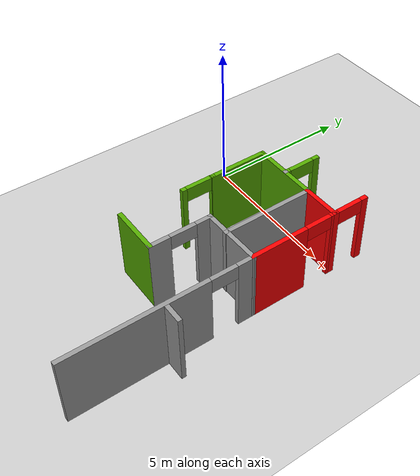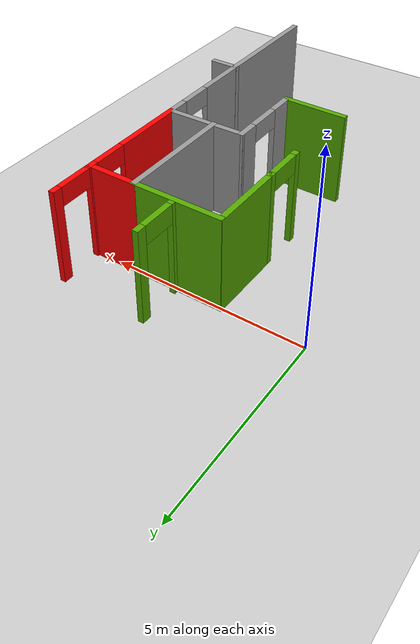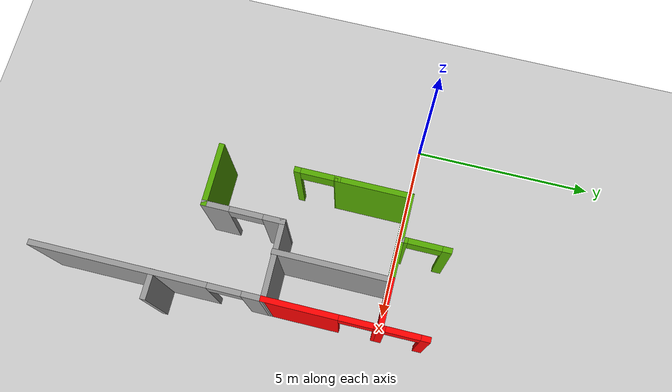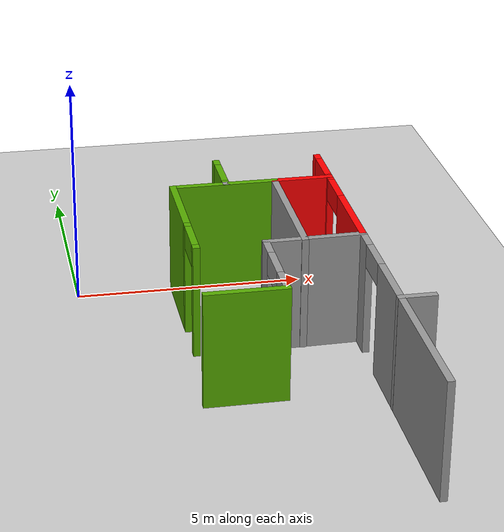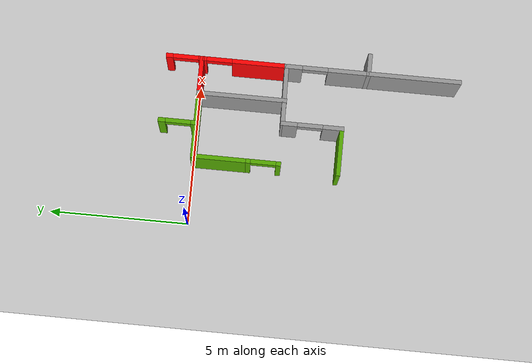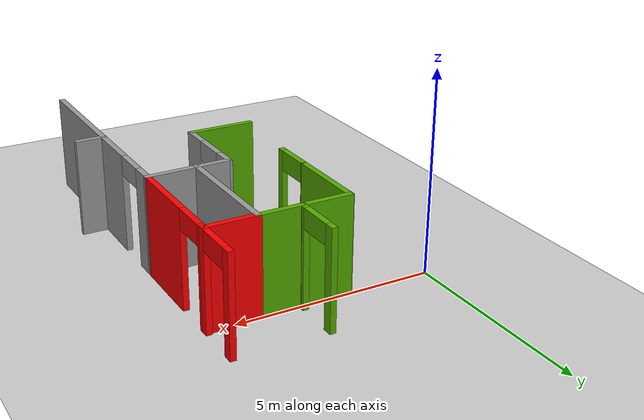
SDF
<sdf version="1.6">
 <world name="default">
  <model name="ground_plane">
   <static>1</static>
   <link name="link">
    <collision name="collision">
     <geometry><plane><normal>0 0 1</normal><size>100 100</size></plane></geometry>
     <surface><friction><ode><mu>100</mu><mu2>50</mu2></ode></friction></surface>
    </collision>
    <visual name="visual">
     <cast_shadows>0</cast_shadows>
     <geometry><plane><normal>0 0 1</normal><size>100 100</size></plane></geometry>
     <material>
      <script><uri>file://media/materials/scripts/gazebo.material</uri><name>Gazebo/Grey</name></script>
     </material>
    </visual>
   </link>
  </model>
  <model name="1floorHouse">
   <link name="Wall_300">
    <pose>-0.789795 0.509996 0 0 0 -1.5708</pose>
    <visual name="Wall_300_Visual_0">
     <pose>-0.8265 0 1.25 0 -0 0</pose>
     <geometry><box><size>0.597 0.15 2.5</size></box></geometry>
     <material>
      <script><uri>file://media/materials/scripts/gazebo.material</uri><name>Gazebo/Grey</name></script>
      <ambient>1 1 1 1</ambient>
      <diffuse>0.7 0.7 0.7 1</diffuse>
      <specular>0.01 0.01 0.01 1</specular>
      <emissive>0 0 0 1</emissive>
     </material>
    </visual>
    <visual name="Wall_300_Visual_1">
     <pose>0.7485 0 1.25 0 -0 0</pose>
     <geometry><box><size>0.753 0.15 2.5</size></box></geometry>
     <material>
      <script><uri>file://media/materials/scripts/gazebo.material</uri><name>Gazebo/Grey</name></script>
      <ambient>1 1 1 1</ambient>
      <diffuse>0.7 0.7 0.7 1</diffuse>
      <specular>0.01 0.01 0.01 1</specular>
      <emissive>0 0 0 1</emissive>
     </material>
    </visual>
    <visual name="Wall_300_Visual_2">
     <pose>-0.078 0 2.25 0 -0 0</pose>
     <geometry><box><size>0.9 0.15 0.5</size></box></geometry>
     <material>
      <script><uri>file://media/materials/scripts/gazebo.material</uri><name>Gazebo/Grey</name></script>
      <ambient>1 1 1 1</ambient>
      <diffuse>0.7 0.7 0.7 1</diffuse>
      <specular>0.01 0.01 0.01 1</specular>
      <emissive>0 0 0 1</emissive>
     </material>
    </visual>
    <collision name="Wall_300_Collision_0">
     <pose>-0.8265 0 1.25 0 -0 0</pose>
     <geometry><box><size>0.597 0.15 2.5</size></box></geometry>
     <surface>
      <friction>
       <ode><mu>1</mu><mu2>1</mu2><fdir1>0 0 0</fdir1><slip1>0</slip1><slip2>0</slip2></ode>
       <torsional>
        <coefficient>1</coefficient>
        <patch_radius>0</patch_radius>
        <surface_radius>0</surface_radius>
        <use_patch_radius>1</use_patch_radius>
        <ode><slip>0</slip></ode>
       </torsional>
      </friction>
      <bounce><restitution_coefficient>0</restitution_coefficient><threshold>1e+06</threshold></bounce>
      <contact>
       <collide_without_contact>0</collide_without_contact>
       <collide_without_contact_bitmask>1</collide_without_contact_bitmask>
       <collide_bitmask>1</collide_bitmask>
       <ode>
        <soft_cfm>0</soft_cfm>
        <soft_erp>0.2</soft_erp>
        <kp>1e+13</kp>
        <kd>1</kd>
        <max_vel>0.01</max_vel>
        <min_depth>0</min_depth>
       </ode>
       <bullet>
        <split_impulse>1</split_impulse>
        <split_impulse_penetration_threshold>-0.01</split_impulse_penetration_threshold>
        <soft_cfm>0</soft_cfm>
        <soft_erp>0.2</soft_erp>
        <kp>1e+13</kp>
        <kd>1</kd>
       </bullet>
      </contact>
     </surface>
    </collision>
    <collision name="Wall_300_Collision_1">
     <pose>0.7485 0 1.25 0 -0 0</pose>
     <geometry><box><size>0.753 0.15 2.5</size></box></geometry>
     <surface>
      <friction>
       <ode><mu>1</mu><mu2>1</mu2><fdir1>0 0 0</fdir1><slip1>0</slip1><slip2>0</slip2></ode>
       <torsional>
        <coefficient>1</coefficient>
        <patch_radius>0</patch_radius>
        <surface_radius>0</surface_radius>
        <use_patch_radius>1</use_patch_radius>
        <ode><slip>0</slip></ode>
       </torsional>
      </friction>
      <bounce><restitution_coefficient>0</restitution_coefficient><threshold>1e+06</threshold></bounce>
      <contact>
       <collide_without_contact>0</collide_without_contact>
       <collide_without_contact_bitmask>1</collide_without_contact_bitmask>
       <collide_bitmask>1</collide_bitmask>
       <ode>
        <soft_cfm>0</soft_cfm>
        <soft_erp>0.2</soft_erp>
        <kp>1e+13</kp>
        <kd>1</kd>
        <max_vel>0.01</max_vel>
        <min_depth>0</min_depth>
       </ode>
       <bullet>
        <split_impulse>1</split_impulse>
        <split_impulse_penetration_threshold>-0.01</split_impulse_penetration_threshold>
        <soft_cfm>0</soft_cfm>
        <soft_erp>0.2</soft_erp>
        <kp>1e+13</kp>
        <kd>1</kd>
       </bullet>
      </contact>
     </surface>
    </collision>
    <collision name="Wall_300_Collision_2">
     <pose>-0.078 0 2.25 0 -0 0</pose>
     <geometry><box><size>0.9 0.15 0.5</size></box></geometry>
     <surface>
      <friction>
       <ode><mu>1</mu><mu2>1</mu2><fdir1>0 0 0</fdir1><slip1>0</slip1><slip2>0</slip2></ode>
       <torsional>
        <coefficient>1</coefficient>
        <patch_radius>0</patch_radius>
        <surface_radius>0</surface_radius>
        <use_patch_radius>1</use_patch_radius>
        <ode><slip>0</slip></ode>
       </torsional>
      </friction>
      <bounce><restitution_coefficient>0</restitution_coefficient><threshold>1e+06</threshold></bounce>
      <contact>
       <collide_without_contact>0</collide_without_contact>
       <collide_without_contact_bitmask>1</collide_without_contact_bitmask>
       <collide_bitmask>1</collide_bitmask>
       <ode>
        <soft_cfm>0</soft_cfm>
        <soft_erp>0.2</soft_erp>
        <kp>1e+13</kp>
        <kd>1</kd>
        <max_vel>0.01</max_vel>
        <min_depth>0</min_depth>
       </ode>
       <bullet>
        <split_impulse>1</split_impulse>
        <split_impulse_penetration_threshold>-0.01</split_impulse_penetration_threshold>
        <soft_cfm>0</soft_cfm>
        <soft_erp>0.2</soft_erp>
        <kp>1e+13</kp>
        <kd>1</kd>
       </bullet>
      </contact>
     </surface>
    </collision>
   </link>
   <link name="Wall_301">
    <pose>-1.5898 -0.540004 0 0 -0 3.14159</pose>
    <visual name="Wall_301_Visual">
     <pose>0 0 1.25 0 -0 0</pose>
     <geometry><box><size>1.75 0.15 2.5</size></box></geometry>
     <material>
      <script><uri>file://media/materials/scripts/gazebo.material</uri><name>Gazebo/Grey</name></script>
      <ambient>0.333333 0.666667 0 1</ambient>
      <diffuse>0.7 0.7 0.7 1</diffuse>
      <specular>0.01 0.01 0.01 1</specular>
      <emissive>0 0 0 1</emissive>
     </material>
    </visual>
    <collision name="Wall_301_Collision">
     <pose>0 0 1.25 0 -0 0</pose>
     <geometry><box><size>1.75 0.15 2.5</size></box></geometry>
     <surface>
      <friction>
       <ode><mu>1</mu><mu2>1</mu2><fdir1>0 0 0</fdir1><slip1>0</slip1><slip2>0</slip2></ode>
       <torsional>
        <coefficient>1</coefficient>
        <patch_radius>0</patch_radius>
        <surface_radius>0</surface_radius>
        <use_patch_radius>1</use_patch_radius>
        <ode><slip>0</slip></ode>
       </torsional>
      </friction>
      <bounce><restitution_coefficient>0</restitution_coefficient><threshold>1e+06</threshold></bounce>
      <contact>
       <collide_without_contact>0</collide_without_contact>
       <collide_without_contact_bitmask>1</collide_without_contact_bitmask>
       <collide_bitmask>1</collide_bitmask>
       <ode>
        <soft_cfm>0</soft_cfm>
        <soft_erp>0.2</soft_erp>
        <kp>1e+13</kp>
        <kd>1</kd>
        <max_vel>0.01</max_vel>
        <min_depth>0</min_depth>
       </ode>
       <bullet>
        <split_impulse>1</split_impulse>
        <split_impulse_penetration_threshold>-0.01</split_impulse_penetration_threshold>
        <soft_cfm>0</soft_cfm>
        <soft_erp>0.2</soft_erp>
        <kp>1e+13</kp>
        <kd>1</kd>
       </bullet>
      </contact>
     </surface>
    </collision>
   </link>
   <link name="Wall_311">
    <pose>-2.23979 2.11 0 0 0 -1.5708</pose>
    <visual name="Wall_311_Visual_0">
     <pose>-0.539157 0 1.25 0 -0 0</pose>
     <geometry><box><size>0.171686 0.15 2.5</size></box></geometry>
     <material>
      <script><uri>file://media/materials/scripts/gazebo.material</uri><name>Gazebo/Grey</name></script>
      <ambient>0.333333 0.666667 0 1</ambient>
      <diffuse>0.7 0.7 0.7 1</diffuse>
      <specular>0.01 0.01 0.01 1</specular>
      <emissive>0 0 0 1</emissive>
     </material>
    </visual>
    <visual name="Wall_311_Visual_1">
     <pose>0.535843 0 1.25 0 -0 0</pose>
     <geometry><box><size>0.178314 0.15 2.5</size></box></geometry>
     <material>
      <script><uri>file://media/materials/scripts/gazebo.material</uri><name>Gazebo/Grey</name></script>
      <ambient>0.333333 0.666667 0 1</ambient>
      <diffuse>0.7 0.7 0.7 1</diffuse>
      <specular>0.01 0.01 0.01 1</specular>
      <emissive>0 0 0 1</emissive>
     </material>
    </visual>
    <visual name="Wall_311_Visual_2">
     <pose>-0.003314 0 2.25 0 -0 0</pose>
     <geometry><box><size>0.9 0.15 0.5</size></box></geometry>
     <material>
      <script><uri>file://media/materials/scripts/gazebo.material</uri><name>Gazebo/Grey</name></script>
      <ambient>0.333333 0.666667 0 1</ambient>
      <diffuse>0.7 0.7 0.7 1</diffuse>
      <specular>0.01 0.01 0.01 1</specular>
      <emissive>0 0 0 1</emissive>
     </material>
    </visual>
    <collision name="Wall_311_Collision_1">
     <pose>0.535843 0 1.25 0 -0 0</pose>
     <geometry><box><size>0.178314 0.15 2.5</size></box></geometry>
     <surface>
      <friction>
       <ode><mu>1</mu><mu2>1</mu2><fdir1>0 0 0</fdir1><slip1>0</slip1><slip2>0</slip2></ode>
       <torsional>
        <coefficient>1</coefficient>
        <patch_radius>0</patch_radius>
        <surface_radius>0</surface_radius>
        <use_patch_radius>1</use_patch_radius>
        <ode><slip>0</slip></ode>
       </torsional>
      </friction>
      <bounce><restitution_coefficient>0</restitution_coefficient><threshold>1e+06</threshold></bounce>
      <contact>
       <collide_without_contact>0</collide_without_contact>
       <collide_without_contact_bitmask>1</collide_without_contact_bitmask>
       <collide_bitmask>1</collide_bitmask>
       <ode>
        <soft_cfm>0</soft_cfm>
        <soft_erp>0.2</soft_erp>
        <kp>1e+13</kp>
        <kd>1</kd>
        <max_vel>0.01</max_vel>
        <min_depth>0</min_depth>
       </ode>
       <bullet>
        <split_impulse>1</split_impulse>
        <split_impulse_penetration_threshold>-0.01</split_impulse_penetration_threshold>
        <soft_cfm>0</soft_cfm>
        <soft_erp>0.2</soft_erp>
        <kp>1e+13</kp>
        <kd>1</kd>
       </bullet>
      </contact>
     </surface>
    </collision>
    <collision name="Wall_311_Collision_0">
     <pose>-0.539157 0 1.25 0 -0 0</pose>
     <geometry><box><size>0.171686 0.15 2.5</size></box></geometry>
     <surface>
      <friction>
       <ode><mu>1</mu><mu2>1</mu2><fdir1>0 0 0</fdir1><slip1>0</slip1><slip2>0</slip2></ode>
       <torsional>
        <coefficient>1</coefficient>
        <patch_radius>0</patch_radius>
        <surface_radius>0</surface_radius>
        <use_patch_radius>1</use_patch_radius>
        <ode><slip>0</slip></ode>
       </torsional>
      </friction>
      <bounce><restitution_coefficient>0</restitution_coefficient><threshold>1e+06</threshold></bounce>
      <contact>
       <collide_without_contact>0</collide_without_contact>
       <collide_without_contact_bitmask>1</collide_without_contact_bitmask>
       <collide_bitmask>1</collide_bitmask>
       <ode>
        <soft_cfm>0</soft_cfm>
        <soft_erp>0.2</soft_erp>
        <kp>1e+13</kp>
        <kd>1</kd>
        <max_vel>0.01</max_vel>
        <min_depth>0</min_depth>
       </ode>
       <bullet>
        <split_impulse>1</split_impulse>
        <split_impulse_penetration_threshold>-0.01</split_impulse_penetration_threshold>
        <soft_cfm>0</soft_cfm>
        <soft_erp>0.2</soft_erp>
        <kp>1e+13</kp>
        <kd>1</kd>
       </bullet>
      </contact>
     </surface>
    </collision>
    <collision name="Wall_311_Collision_2">
     <pose>-0.003314 0 2.25 0 -0 0</pose>
     <geometry><box><size>0.9 0.15 0.5</size></box></geometry>
     <surface>
      <friction>
       <ode><mu>1</mu><mu2>1</mu2><fdir1>0 0 0</fdir1><slip1>0</slip1><slip2>0</slip2></ode>
       <torsional>
        <coefficient>1</coefficient>
        <patch_radius>0</patch_radius>
        <surface_radius>0</surface_radius>
        <use_patch_radius>1</use_patch_radius>
        <ode><slip>0</slip></ode>
       </torsional>
      </friction>
      <bounce><restitution_coefficient>0</restitution_coefficient><threshold>1e+06</threshold></bounce>
      <contact>
       <collide_without_contact>0</collide_without_contact>
       <collide_without_contact_bitmask>1</collide_without_contact_bitmask>
       <collide_bitmask>1</collide_bitmask>
       <ode>
        <soft_cfm>0</soft_cfm>
        <soft_erp>0.2</soft_erp>
        <kp>1e+13</kp>
        <kd>1</kd>
        <max_vel>0.01</max_vel>
        <min_depth>0</min_depth>
       </ode>
       <bullet>
        <split_impulse>1</split_impulse>
        <split_impulse_penetration_threshold>-0.01</split_impulse_penetration_threshold>
        <soft_cfm>0</soft_cfm>
        <soft_erp>0.2</soft_erp>
        <kp>1e+13</kp>
        <kd>1</kd>
       </bullet>
      </contact>
     </surface>
    </collision>
   </link>
   <link name="Wall_312">
    <pose>0.235204 1.58011 0 0 -0 0.01962</pose>
    <visual name="Wall_312_Visual">
     <pose>0 0 1.25 0 -0 0</pose>
     <geometry><box><size>2.20039 0.15 2.5</size></box></geometry>
     <material>
      <script><uri>file://media/materials/scripts/gazebo.material</uri><name>Gazebo/Grey</name></script>
      <ambient>1 1 1 1</ambient>
      <diffuse>0.7 0.7 0.7 1</diffuse>
      <specular>0.01 0.01 0.01 1</specular>
      <emissive>0 0 0 1</emissive>
     </material>
    </visual>
    <collision name="Wall_312_Collision">
     <pose>0 0 1.25 0 -0 0</pose>
     <geometry><box><size>2.20039 0.15 2.5</size></box></geometry>
     <surface>
      <friction>
       <ode><mu>1</mu><mu2>1</mu2><fdir1>0 0 0</fdir1><slip1>0</slip1><slip2>0</slip2></ode>
       <torsional>
        <coefficient>1</coefficient>
        <patch_radius>0</patch_radius>
        <surface_radius>0</surface_radius>
        <use_patch_radius>1</use_patch_radius>
        <ode><slip>0</slip></ode>
       </torsional>
      </friction>
      <bounce><restitution_coefficient>0</restitution_coefficient><threshold>1e+06</threshold></bounce>
      <contact>
       <collide_without_contact>0</collide_without_contact>
       <collide_without_contact_bitmask>1</collide_without_contact_bitmask>
       <collide_bitmask>1</collide_bitmask>
       <ode>
        <soft_cfm>0</soft_cfm>
        <soft_erp>0.2</soft_erp>
        <kp>1e+13</kp>
        <kd>1</kd>
        <max_vel>0.01</max_vel>
        <min_depth>0</min_depth>
       </ode>
       <bullet>
        <split_impulse>1</split_impulse>
        <split_impulse_penetration_threshold>-0.01</split_impulse_penetration_threshold>
        <soft_cfm>0</soft_cfm>
        <soft_erp>0.2</soft_erp>
        <kp>1e+13</kp>
        <kd>1</kd>
       </bullet>
      </contact>
     </surface>
    </collision>
   </link>
   <link name="Wall_313">
    <pose>1.26021 3.10511 0 0 -0 1.5708</pose>
    <visual name="Wall_313_Visual_0">
     <pose>-0.572109 0 1.25 0 -0 0</pose>
     <geometry><box><size>2.01555 0.15 2.5</size></box></geometry>
     <material>
      <script><uri>file://media/materials/scripts/gazebo.material</uri><name>Gazebo/Grey</name></script>
      <ambient>1 0 0 1</ambient>
      <diffuse>0.7 0.7 0.7 1</diffuse>
      <specular>0.01 0.01 0.01 1</specular>
      <emissive>0 0 0 1</emissive>
     </material>
    </visual>
    <visual name="Wall_313_Visual_2">
     <pose>0.885669 0 2.25 0 -0 0</pose>
     <geometry><box><size>0.9 0.15 0.5</size></box></geometry>
     <material>
      <script><uri>file://media/materials/scripts/gazebo.material</uri><name>Gazebo/Grey</name></script>
      <ambient>1 0 0 1</ambient>
      <diffuse>0.7 0.7 0.7 1</diffuse>
      <specular>0.01 0.01 0.01 1</specular>
      <emissive>0 0 0 1</emissive>
     </material>
    </visual>
    <visual name="Wall_313_Visual_1">
     <pose>1.45778 0 1.25 0 -0 0</pose>
     <geometry><box><size>0.244218 0.15 2.5</size></box></geometry>
     <material>
      <script><uri>file://media/materials/scripts/gazebo.material</uri><name>Gazebo/Grey</name></script>
      <ambient>1 0 0 1</ambient>
      <diffuse>0.7 0.7 0.7 1</diffuse>
      <specular>0.01 0.01 0.01 1</specular>
      <emissive>0 0 0 1</emissive>
     </material>
    </visual>
    <collision name="Wall_313_Collision_1">
     <pose>1.45778 0 1.25 0 -0 0</pose>
     <geometry><box><size>0.244218 0.15 2.5</size></box></geometry>
     <surface>
      <friction>
       <ode><mu>1</mu><mu2>1</mu2><fdir1>0 0 0</fdir1><slip1>0</slip1><slip2>0</slip2></ode>
       <torsional>
        <coefficient>1</coefficient>
        <patch_radius>0</patch_radius>
        <surface_radius>0</surface_radius>
        <use_patch_radius>1</use_patch_radius>
        <ode><slip>0</slip></ode>
       </torsional>
      </friction>
      <bounce><restitution_coefficient>0</restitution_coefficient><threshold>1e+06</threshold></bounce>
      <contact>
       <collide_without_contact>0</collide_without_contact>
       <collide_without_contact_bitmask>1</collide_without_contact_bitmask>
       <collide_bitmask>1</collide_bitmask>
       <ode>
        <soft_cfm>0</soft_cfm>
        <soft_erp>0.2</soft_erp>
        <kp>1e+13</kp>
        <kd>1</kd>
        <max_vel>0.01</max_vel>
        <min_depth>0</min_depth>
       </ode>
       <bullet>
        <split_impulse>1</split_impulse>
        <split_impulse_penetration_threshold>-0.01</split_impulse_penetration_threshold>
        <soft_cfm>0</soft_cfm>
        <soft_erp>0.2</soft_erp>
        <kp>1e+13</kp>
        <kd>1</kd>
       </bullet>
      </contact>
     </surface>
    </collision>
    <collision name="Wall_313_Collision_0">
     <pose>-0.572109 0 1.25 0 -0 0</pose>
     <geometry><box><size>2.01555 0.15 2.5</size></box></geometry>
     <surface>
      <friction>
       <ode><mu>1</mu><mu2>1</mu2><fdir1>0 0 0</fdir1><slip1>0</slip1><slip2>0</slip2></ode>
       <torsional>
        <coefficient>1</coefficient>
        <patch_radius>0</patch_radius>
        <surface_radius>0</surface_radius>
        <use_patch_radius>1</use_patch_radius>
        <ode><slip>0</slip></ode>
       </torsional>
      </friction>
      <bounce><restitution_coefficient>0</restitution_coefficient><threshold>1e+06</threshold></bounce>
      <contact>
       <collide_without_contact>0</collide_without_contact>
       <collide_without_contact_bitmask>1</collide_without_contact_bitmask>
       <collide_bitmask>1</collide_bitmask>
       <ode>
        <soft_cfm>0</soft_cfm>
        <soft_erp>0.2</soft_erp>
        <kp>1e+13</kp>
        <kd>1</kd>
        <max_vel>0.01</max_vel>
        <min_depth>0</min_depth>
       </ode>
       <bullet>
        <split_impulse>1</split_impulse>
        <split_impulse_penetration_threshold>-0.01</split_impulse_penetration_threshold>
        <soft_cfm>0</soft_cfm>
        <soft_erp>0.2</soft_erp>
        <kp>1e+13</kp>
        <kd>1</kd>
       </bullet>
      </contact>
     </surface>
    </collision>
    <collision name="Wall_313_Collision_2">
     <pose>0.885669 0 2.25 0 -0 0</pose>
     <geometry><box><size>0.9 0.15 0.5</size></box></geometry>
     <surface>
      <friction>
       <ode><mu>1</mu><mu2>1</mu2><fdir1>0 0 0</fdir1><slip1>0</slip1><slip2>0</slip2></ode>
       <torsional>
        <coefficient>1</coefficient>
        <patch_radius>0</patch_radius>
        <surface_radius>0</surface_radius>
        <use_patch_radius>1</use_patch_radius>
        <ode><slip>0</slip></ode>
       </torsional>
      </friction>
      <bounce><restitution_coefficient>0</restitution_coefficient><threshold>1e+06</threshold></bounce>
      <contact>
       <collide_without_contact>0</collide_without_contact>
       <collide_without_contact_bitmask>1</collide_without_contact_bitmask>
       <collide_bitmask>1</collide_bitmask>
       <ode>
        <soft_cfm>0</soft_cfm>
        <soft_erp>0.2</soft_erp>
        <kp>1e+13</kp>
        <kd>1</kd>
        <max_vel>0.01</max_vel>
        <min_depth>0</min_depth>
       </ode>
       <bullet>
        <split_impulse>1</split_impulse>
        <split_impulse_penetration_threshold>-0.01</split_impulse_penetration_threshold>
        <soft_cfm>0</soft_cfm>
        <soft_erp>0.2</soft_erp>
        <kp>1e+13</kp>
        <kd>1</kd>
       </bullet>
      </contact>
     </surface>
    </collision>
   </link>
   <link name="Wall_314">
    <pose>0.641704 4.61 0 0 -0 3.14159</pose>
    <visual name="Wall_314_Visual">
     <pose>0 0 1.25 0 -0 0</pose>
     <geometry><box><size>1.387 0.15 2.5</size></box></geometry>
     <material>
      <script><uri>file://media/materials/scripts/gazebo.material</uri><name>Gazebo/Grey</name></script>
      <ambient>1 0 0 1</ambient>
      <diffuse>0.7 0.7 0.7 1</diffuse>
      <specular>0.01 0.01 0.01 1</specular>
      <emissive>0 0 0 1</emissive>
     </material>
    </visual>
    <collision name="Wall_314_Collision">
     <pose>0 0 1.25 0 -0 0</pose>
     <geometry><box><size>1.387 0.15 2.5</size></box></geometry>
     <surface>
      <friction>
       <ode><mu>1</mu><mu2>1</mu2><fdir1>0 0 0</fdir1><slip1>0</slip1><slip2>0</slip2></ode>
       <torsional>
        <coefficient>1</coefficient>
        <patch_radius>0</patch_radius>
        <surface_radius>0</surface_radius>
        <use_patch_radius>1</use_patch_radius>
        <ode><slip>0</slip></ode>
       </torsional>
      </friction>
      <bounce><restitution_coefficient>0</restitution_coefficient><threshold>1e+06</threshold></bounce>
      <contact>
       <collide_without_contact>0</collide_without_contact>
       <collide_without_contact_bitmask>1</collide_without_contact_bitmask>
       <collide_bitmask>1</collide_bitmask>
       <ode>
        <soft_cfm>0</soft_cfm>
        <soft_erp>0.2</soft_erp>
        <kp>1e+13</kp>
        <kd>1</kd>
        <max_vel>0.01</max_vel>
        <min_depth>0</min_depth>
       </ode>
       <bullet>
        <split_impulse>1</split_impulse>
        <split_impulse_penetration_threshold>-0.01</split_impulse_penetration_threshold>
        <soft_cfm>0</soft_cfm>
        <soft_erp>0.2</soft_erp>
        <kp>1e+13</kp>
        <kd>1</kd>
       </bullet>
      </contact>
     </surface>
    </collision>
   </link>
   <link name="Wall_315">
    <pose>0.023205 3.085 0 0 0 -1.5708</pose>
    <visual name="Wall_315_Visual">
     <pose>0 0 1.25 0 -0 0</pose>
     <geometry><box><size>3.2 0.15 2.5</size></box></geometry>
     <material>
      <script><uri>file://media/materials/scripts/gazebo.material</uri><name>Gazebo/Grey</name></script>
      <ambient>1 1 1 1</ambient>
      <diffuse>0.7 0.7 0.7 1</diffuse>
      <specular>0.01 0.01 0.01 1</specular>
      <emissive>0 0 0 1</emissive>
     </material>
    </visual>
    <collision name="Wall_315_Collision">
     <pose>0 0 1.25 0 -0 0</pose>
     <geometry><box><size>3.2 0.15 2.5</size></box></geometry>
     <surface>
      <friction>
       <ode><mu>1</mu><mu2>1</mu2><fdir1>0 0 0</fdir1><slip1>0</slip1><slip2>0</slip2></ode>
       <torsional>
        <coefficient>1</coefficient>
        <patch_radius>0</patch_radius>
        <surface_radius>0</surface_radius>
        <use_patch_radius>1</use_patch_radius>
        <ode><slip>0</slip></ode>
       </torsional>
      </friction>
      <bounce><restitution_coefficient>0</restitution_coefficient><threshold>1e+06</threshold></bounce>
      <contact>
       <collide_without_contact>0</collide_without_contact>
       <collide_without_contact_bitmask>1</collide_without_contact_bitmask>
       <collide_bitmask>1</collide_bitmask>
       <ode>
        <soft_cfm>0</soft_cfm>
        <soft_erp>0.2</soft_erp>
        <kp>1e+13</kp>
        <kd>1</kd>
        <max_vel>0.01</max_vel>
        <min_depth>0</min_depth>
       </ode>
       <bullet>
        <split_impulse>1</split_impulse>
        <split_impulse_penetration_threshold>-0.01</split_impulse_penetration_threshold>
        <soft_cfm>0</soft_cfm>
        <soft_erp>0.2</soft_erp>
        <kp>1e+13</kp>
        <kd>1</kd>
       </bullet>
      </contact>
     </surface>
    </collision>
   </link>
   <link name="Wall_316">
    <pose>-1.1018 4.61 0 0 -0 3.14159</pose>
    <visual name="Wall_316_Visual">
     <pose>0 0 1.25 0 -0 0</pose>
     <geometry><box><size>2.4 0.15 2.5</size></box></geometry>
     <material>
      <script><uri>file://media/materials/scripts/gazebo.material</uri><name>Gazebo/Grey</name></script>
      <ambient>0.333333 0.666667 0 1</ambient>
      <diffuse>0.7 0.7 0.7 1</diffuse>
      <specular>0.01 0.01 0.01 1</specular>
      <emissive>0 0 0 1</emissive>
     </material>
    </visual>
    <collision name="Wall_316_Collision">
     <pose>0 0 1.25 0 -0 0</pose>
     <geometry><box><size>2.4 0.15 2.5</size></box></geometry>
     <surface>
      <friction>
       <ode><mu>1</mu><mu2>1</mu2><fdir1>0 0 0</fdir1><slip1>0</slip1><slip2>0</slip2></ode>
       <torsional>
        <coefficient>1</coefficient>
        <patch_radius>0</patch_radius>
        <surface_radius>0</surface_radius>
        <use_patch_radius>1</use_patch_radius>
        <ode><slip>0</slip></ode>
       </torsional>
      </friction>
      <bounce><restitution_coefficient>0</restitution_coefficient><threshold>1e+06</threshold></bounce>
      <contact>
       <collide_without_contact>0</collide_without_contact>
       <collide_without_contact_bitmask>1</collide_without_contact_bitmask>
       <collide_bitmask>1</collide_bitmask>
       <ode>
        <soft_cfm>0</soft_cfm>
        <soft_erp>0.2</soft_erp>
        <kp>1e+13</kp>
        <kd>1</kd>
        <max_vel>0.01</max_vel>
        <min_depth>0</min_depth>
       </ode>
       <bullet>
        <split_impulse>1</split_impulse>
        <split_impulse_penetration_threshold>-0.01</split_impulse_penetration_threshold>
        <soft_cfm>0</soft_cfm>
        <soft_erp>0.2</soft_erp>
        <kp>1e+13</kp>
        <kd>1</kd>
       </bullet>
      </contact>
     </surface>
    </collision>
   </link>
   <link name="Wall_317">
    <pose>-2.23979 3.635 0 0 -0 1.5708</pose>
    <visual name="Wall_317_Visual">
     <pose>0 0 1.25 0 -0 0</pose>
     <geometry><box><size>2.1 0.15 2.5</size></box></geometry>
     <material>
      <script><uri>file://media/materials/scripts/gazebo.material</uri><name>Gazebo/Grey</name></script>
      <ambient>0.333333 0.666667 0 1</ambient>
      <diffuse>0.7 0.7 0.7 1</diffuse>
      <specular>0.01 0.01 0.01 1</specular>
      <emissive>0 0 0 1</emissive>
     </material>
    </visual>
    <collision name="Wall_317_Collision">
     <pose>0 0 1.25 0 -0 0</pose>
     <geometry><box><size>2.1 0.15 2.5</size></box></geometry>
     <surface>
      <friction>
       <ode><mu>1</mu><mu2>1</mu2><fdir1>0 0 0</fdir1><slip1>0</slip1><slip2>0</slip2></ode>
       <torsional>
        <coefficient>1</coefficient>
        <patch_radius>0</patch_radius>
        <surface_radius>0</surface_radius>
        <use_patch_radius>1</use_patch_radius>
        <ode><slip>0</slip></ode>
       </torsional>
      </friction>
      <bounce><restitution_coefficient>0</restitution_coefficient><threshold>1e+06</threshold></bounce>
      <contact>
       <collide_without_contact>0</collide_without_contact>
       <collide_without_contact_bitmask>1</collide_without_contact_bitmask>
       <collide_bitmask>1</collide_bitmask>
       <ode>
        <soft_cfm>0</soft_cfm>
        <soft_erp>0.2</soft_erp>
        <kp>1e+13</kp>
        <kd>1</kd>
        <max_vel>0.01</max_vel>
        <min_depth>0</min_depth>
       </ode>
       <bullet>
        <split_impulse>1</split_impulse>
        <split_impulse_penetration_threshold>-0.01</split_impulse_penetration_threshold>
        <soft_cfm>0</soft_cfm>
        <soft_erp>0.2</soft_erp>
        <kp>1e+13</kp>
        <kd>1</kd>
       </bullet>
      </contact>
     </surface>
    </collision>
   </link>
   <link name="Wall_320">
    <pose>-1.0598 5.245 0 0 0 -1.5708</pose>
    <visual name="Wall_320_Visual_0">
     <pose>-0.572184 0 1.25 0 -0 0</pose>
     <geometry><box><size>0.255633 0.15 2.5</size></box></geometry>
     <material>
      <script><uri>file://media/materials/scripts/gazebo.material</uri><name>Gazebo/Grey</name></script>
      <ambient>0.333333 0.666667 0 1</ambient>
      <diffuse>0.7 0.7 0.7 1</diffuse>
      <specular>0.01 0.01 0.01 1</specular>
      <emissive>0 0 0 1</emissive>
     </material>
    </visual>
    <visual name="Wall_320_Visual_1">
     <pose>0.577816 0 1.25 0 -0 0</pose>
     <geometry><box><size>0.244367 0.15 2.5</size></box></geometry>
     <material>
      <script><uri>file://media/materials/scripts/gazebo.material</uri><name>Gazebo/Grey</name></script>
      <ambient>0.333333 0.666667 0 1</ambient>
      <diffuse>0.7 0.7 0.7 1</diffuse>
      <specular>0.01 0.01 0.01 1</specular>
      <emissive>0 0 0 1</emissive>
     </material>
    </visual>
    <visual name="Wall_320_Visual_2">
     <pose>0.005633 0 2.25 0 -0 0</pose>
     <geometry><box><size>0.9 0.15 0.5</size></box></geometry>
     <material>
      <script><uri>file://media/materials/scripts/gazebo.material</uri><name>Gazebo/Grey</name></script>
      <ambient>0.333333 0.666667 0 1</ambient>
      <diffuse>0.7 0.7 0.7 1</diffuse>
      <specular>0.01 0.01 0.01 1</specular>
      <emissive>0 0 0 1</emissive>
     </material>
    </visual>
    <collision name="Wall_320_Collision_0">
     <pose>-0.572184 0 1.25 0 -0 0</pose>
     <geometry><box><size>0.255633 0.15 2.5</size></box></geometry>
     <surface>
      <friction>
       <ode><mu>1</mu><mu2>1</mu2><fdir1>0 0 0</fdir1><slip1>0</slip1><slip2>0</slip2></ode>
       <torsional>
        <coefficient>1</coefficient>
        <patch_radius>0</patch_radius>
        <surface_radius>0</surface_radius>
        <use_patch_radius>1</use_patch_radius>
        <ode><slip>0</slip></ode>
       </torsional>
      </friction>
      <bounce><restitution_coefficient>0</restitution_coefficient><threshold>1e+06</threshold></bounce>
      <contact>
       <collide_without_contact>0</collide_without_contact>
       <collide_without_contact_bitmask>1</collide_without_contact_bitmask>
       <collide_bitmask>1</collide_bitmask>
       <ode>
        <soft_cfm>0</soft_cfm>
        <soft_erp>0.2</soft_erp>
        <kp>1e+13</kp>
        <kd>1</kd>
        <max_vel>0.01</max_vel>
        <min_depth>0</min_depth>
       </ode>
       <bullet>
        <split_impulse>1</split_impulse>
        <split_impulse_penetration_threshold>-0.01</split_impulse_penetration_threshold>
        <soft_cfm>0</soft_cfm>
        <soft_erp>0.2</soft_erp>
        <kp>1e+13</kp>
        <kd>1</kd>
       </bullet>
      </contact>
     </surface>
    </collision>
    <collision name="Wall_320_Collision_2">
     <pose>0.005633 0 2.25 0 -0 0</pose>
     <geometry><box><size>0.9 0.15 0.5</size></box></geometry>
     <surface>
      <friction>
       <ode><mu>1</mu><mu2>1</mu2><fdir1>0 0 0</fdir1><slip1>0</slip1><slip2>0</slip2></ode>
       <torsional>
        <coefficient>1</coefficient>
        <patch_radius>0</patch_radius>
        <surface_radius>0</surface_radius>
        <use_patch_radius>1</use_patch_radius>
        <ode><slip>0</slip></ode>
       </torsional>
      </friction>
      <bounce><restitution_coefficient>0</restitution_coefficient><threshold>1e+06</threshold></bounce>
      <contact>
       <collide_without_contact>0</collide_without_contact>
       <collide_without_contact_bitmask>1</collide_without_contact_bitmask>
       <collide_bitmask>1</collide_bitmask>
       <ode>
        <soft_cfm>0</soft_cfm>
        <soft_erp>0.2</soft_erp>
        <kp>1e+13</kp>
        <kd>1</kd>
        <max_vel>0.01</max_vel>
        <min_depth>0</min_depth>
       </ode>
       <bullet>
        <split_impulse>1</split_impulse>
        <split_impulse_penetration_threshold>-0.01</split_impulse_penetration_threshold>
        <soft_cfm>0</soft_cfm>
        <soft_erp>0.2</soft_erp>
        <kp>1e+13</kp>
        <kd>1</kd>
       </bullet>
      </contact>
     </surface>
    </collision>
    <collision name="Wall_320_Collision_1">
     <pose>0.577816 0 1.25 0 -0 0</pose>
     <geometry><box><size>0.244367 0.15 2.5</size></box></geometry>
     <surface>
      <friction>
       <ode><mu>1</mu><mu2>1</mu2><fdir1>0 0 0</fdir1><slip1>0</slip1><slip2>0</slip2></ode>
       <torsional>
        <coefficient>1</coefficient>
        <patch_radius>0</patch_radius>
        <surface_radius>0</surface_radius>
        <use_patch_radius>1</use_patch_radius>
        <ode><slip>0</slip></ode>
       </torsional>
      </friction>
      <bounce><restitution_coefficient>0</restitution_coefficient><threshold>1e+06</threshold></bounce>
      <contact>
       <collide_without_contact>0</collide_without_contact>
       <collide_without_contact_bitmask>1</collide_without_contact_bitmask>
       <collide_bitmask>1</collide_bitmask>
       <ode>
        <soft_cfm>0</soft_cfm>
        <soft_erp>0.2</soft_erp>
        <kp>1e+13</kp>
        <kd>1</kd>
        <max_vel>0.01</max_vel>
        <min_depth>0</min_depth>
       </ode>
       <bullet>
        <split_impulse>1</split_impulse>
        <split_impulse_penetration_threshold>-0.01</split_impulse_penetration_threshold>
        <soft_cfm>0</soft_cfm>
        <soft_erp>0.2</soft_erp>
        <kp>1e+13</kp>
        <kd>1</kd>
       </bullet>
      </contact>
     </surface>
    </collision>
   </link>
   <link name="Wall_321">
    <pose>-1.0598 4.62 0 0 -0 0</pose>
    <visual name="Wall_321_Visual">
     <pose>0 0 1.25 0 -0 0</pose>
     <geometry><box><size>0.15 0.15 2.5</size></box></geometry>
     <material>
      <script><uri>file://media/materials/scripts/gazebo.material</uri><name>Gazebo/Grey</name></script>
      <ambient>1 1 1 1</ambient>
      <diffuse>0.7 0.7 0.7 1</diffuse>
      <specular>0.01 0.01 0.01 1</specular>
      <emissive>0 0 0 1</emissive>
     </material>
    </visual>
    <collision name="Wall_321_Collision">
     <pose>0 0 1.25 0 -0 0</pose>
     <geometry><box><size>0.15 0.15 2.5</size></box></geometry>
     <surface>
      <friction>
       <ode><mu>1</mu><mu2>1</mu2><fdir1>0 0 0</fdir1><slip1>0</slip1><slip2>0</slip2></ode>
       <torsional>
        <coefficient>1</coefficient>
        <patch_radius>0</patch_radius>
        <surface_radius>0</surface_radius>
        <use_patch_radius>1</use_patch_radius>
        <ode><slip>0</slip></ode>
       </torsional>
      </friction>
      <bounce><restitution_coefficient>0</restitution_coefficient><threshold>1e+06</threshold></bounce>
      <contact>
       <collide_without_contact>0</collide_without_contact>
       <collide_without_contact_bitmask>1</collide_without_contact_bitmask>
       <collide_bitmask>1</collide_bitmask>
       <ode>
        <soft_cfm>0</soft_cfm>
        <soft_erp>0.2</soft_erp>
        <kp>1e+13</kp>
        <kd>1</kd>
        <max_vel>0.01</max_vel>
        <min_depth>0</min_depth>
       </ode>
       <bullet>
        <split_impulse>1</split_impulse>
        <split_impulse_penetration_threshold>-0.01</split_impulse_penetration_threshold>
        <soft_cfm>0</soft_cfm>
        <soft_erp>0.2</soft_erp>
        <kp>1e+13</kp>
        <kd>1</kd>
       </bullet>
      </contact>
     </surface>
    </collision>
   </link>
   <link name="Wall_325">
    <pose>1.26021 5.21 0 0 -0 1.5708</pose>
    <visual name="Wall_325_Visual_0">
     <pose>-0.574505 0 1.25 0 -0 0</pose>
     <geometry><box><size>0.20099 0.15 2.5</size></box></geometry>
     <material>
      <script><uri>file://media/materials/scripts/gazebo.material</uri><name>Gazebo/Grey</name></script>
      <ambient>1 0 0 1</ambient>
      <diffuse>0.7 0.7 0.7 1</diffuse>
      <specular>0.01 0.01 0.01 1</specular>
      <emissive>0 0 0 1</emissive>
     </material>
    </visual>
    <visual name="Wall_325_Visual_1">
     <pose>0.550495 0 1.25 0 -0 0</pose>
     <geometry><box><size>0.24901 0.15 2.5</size></box></geometry>
     <material>
      <script><uri>file://media/materials/scripts/gazebo.material</uri><name>Gazebo/Grey</name></script>
      <ambient>1 0 0 1</ambient>
      <diffuse>0.7 0.7 0.7 1</diffuse>
      <specular>0.01 0.01 0.01 1</specular>
      <emissive>0 0 0 1</emissive>
     </material>
    </visual>
    <visual name="Wall_325_Visual_2">
     <pose>-0.02401 0 2.25 0 -0 0</pose>
     <geometry><box><size>0.9 0.15 0.5</size></box></geometry>
     <material>
      <script><uri>file://media/materials/scripts/gazebo.material</uri><name>Gazebo/Grey</name></script>
      <ambient>1 0 0 1</ambient>
      <diffuse>0.7 0.7 0.7 1</diffuse>
      <specular>0.01 0.01 0.01 1</specular>
      <emissive>0 0 0 1</emissive>
     </material>
    </visual>
    <collision name="Wall_325_Collision_0">
     <pose>-0.574505 0 1.25 0 -0 0</pose>
     <geometry><box><size>0.20099 0.15 2.5</size></box></geometry>
     <surface>
      <friction>
       <ode><mu>1</mu><mu2>1</mu2><fdir1>0 0 0</fdir1><slip1>0</slip1><slip2>0</slip2></ode>
       <torsional>
        <coefficient>1</coefficient>
        <patch_radius>0</patch_radius>
        <surface_radius>0</surface_radius>
        <use_patch_radius>1</use_patch_radius>
        <ode><slip>0</slip></ode>
       </torsional>
      </friction>
      <bounce><restitution_coefficient>0</restitution_coefficient><threshold>1e+06</threshold></bounce>
      <contact>
       <collide_without_contact>0</collide_without_contact>
       <collide_without_contact_bitmask>1</collide_without_contact_bitmask>
       <collide_bitmask>1</collide_bitmask>
       <ode>
        <soft_cfm>0</soft_cfm>
        <soft_erp>0.2</soft_erp>
        <kp>1e+13</kp>
        <kd>1</kd>
        <max_vel>0.01</max_vel>
        <min_depth>0</min_depth>
       </ode>
       <bullet>
        <split_impulse>1</split_impulse>
        <split_impulse_penetration_threshold>-0.01</split_impulse_penetration_threshold>
        <soft_cfm>0</soft_cfm>
        <soft_erp>0.2</soft_erp>
        <kp>1e+13</kp>
        <kd>1</kd>
       </bullet>
      </contact>
     </surface>
    </collision>
    <collision name="Wall_325_Collision_1">
     <pose>0.550495 0 1.25 0 -0 0</pose>
     <geometry><box><size>0.24901 0.15 2.5</size></box></geometry>
     <surface>
      <friction>
       <ode><mu>1</mu><mu2>1</mu2><fdir1>0 0 0</fdir1><slip1>0</slip1><slip2>0</slip2></ode>
       <torsional>
        <coefficient>1</coefficient>
        <patch_radius>0</patch_radius>
        <surface_radius>0</surface_radius>
        <use_patch_radius>1</use_patch_radius>
        <ode><slip>0</slip></ode>
       </torsional>
      </friction>
      <bounce><restitution_coefficient>0</restitution_coefficient><threshold>1e+06</threshold></bounce>
      <contact>
       <collide_without_contact>0</collide_without_contact>
       <collide_without_contact_bitmask>1</collide_without_contact_bitmask>
       <collide_bitmask>1</collide_bitmask>
       <ode>
        <soft_cfm>0</soft_cfm>
        <soft_erp>0.2</soft_erp>
        <kp>1e+13</kp>
        <kd>1</kd>
        <max_vel>0.01</max_vel>
        <min_depth>0</min_depth>
       </ode>
       <bullet>
        <split_impulse>1</split_impulse>
        <split_impulse_penetration_threshold>-0.01</split_impulse_penetration_threshold>
        <soft_cfm>0</soft_cfm>
        <soft_erp>0.2</soft_erp>
        <kp>1e+13</kp>
        <kd>1</kd>
       </bullet>
      </contact>
     </surface>
    </collision>
    <collision name="Wall_325_Collision_2">
     <pose>-0.02401 0 2.25 0 -0 0</pose>
     <geometry><box><size>0.9 0.15 0.5</size></box></geometry>
     <surface>
      <friction>
       <ode><mu>1</mu><mu2>1</mu2><fdir1>0 0 0</fdir1><slip1>0</slip1><slip2>0</slip2></ode>
       <torsional>
        <coefficient>1</coefficient>
        <patch_radius>0</patch_radius>
        <surface_radius>0</surface_radius>
        <use_patch_radius>1</use_patch_radius>
        <ode><slip>0</slip></ode>
       </torsional>
      </friction>
      <bounce><restitution_coefficient>0</restitution_coefficient><threshold>1e+06</threshold></bounce>
      <contact>
       <collide_without_contact>0</collide_without_contact>
       <collide_without_contact_bitmask>1</collide_without_contact_bitmask>
       <collide_bitmask>1</collide_bitmask>
       <ode>
        <soft_cfm>0</soft_cfm>
        <soft_erp>0.2</soft_erp>
        <kp>1e+13</kp>
        <kd>1</kd>
        <max_vel>0.01</max_vel>
        <min_depth>0</min_depth>
       </ode>
       <bullet>
        <split_impulse>1</split_impulse>
        <split_impulse_penetration_threshold>-0.01</split_impulse_penetration_threshold>
        <soft_cfm>0</soft_cfm>
        <soft_erp>0.2</soft_erp>
        <kp>1e+13</kp>
        <kd>1</kd>
       </bullet>
      </contact>
     </surface>
    </collision>
   </link>
   <link name="Wall_336">
    <pose>1.26021 -1.46995 0 0 0 -1.5708</pose>
    <visual name="Wall_336_Visual_0">
     <pose>-2.8165 0 1.25 0 -0 0</pose>
     <geometry><box><size>0.617113 0.15 2.5</size></box></geometry>
     <material>
      <script><uri>file://media/materials/scripts/gazebo.material</uri><name>Gazebo/Grey</name></script>
      <ambient>1 1 1 1</ambient>
      <diffuse>0.7 0.7 0.7 1</diffuse>
      <specular>0.01 0.01 0.01 1</specular>
      <emissive>0 0 0 1</emissive>
     </material>
    </visual>
    <visual name="Wall_336_Visual_1">
     <pose>0.758557 0 1.25 0 -0 0</pose>
     <geometry><box><size>4.733 0.15 2.5</size></box></geometry>
     <material>
      <script><uri>file://media/materials/scripts/gazebo.material</uri><name>Gazebo/Grey</name></script>
      <ambient>1 1 1 1</ambient>
      <diffuse>0.7 0.7 0.7 1</diffuse>
      <specular>0.01 0.01 0.01 1</specular>
      <emissive>0 0 0 1</emissive>
     </material>
    </visual>
    <visual name="Wall_336_Visual_2">
     <pose>-2.05794 0 2.25 0 -0 0</pose>
     <geometry><box><size>0.9 0.15 0.5</size></box></geometry>
     <material>
      <script><uri>file://media/materials/scripts/gazebo.material</uri><name>Gazebo/Grey</name></script>
      <ambient>1 1 1 1</ambient>
      <diffuse>0.7 0.7 0.7 1</diffuse>
      <specular>0.01 0.01 0.01 1</specular>
      <emissive>0 0 0 1</emissive>
     </material>
    </visual>
    <collision name="Wall_336_Collision_0">
     <pose>-2.8165 0 1.25 0 -0 0</pose>
     <geometry><box><size>0.617113 0.15 2.5</size></box></geometry>
     <surface>
      <friction>
       <ode><mu>1</mu><mu2>1</mu2><fdir1>0 0 0</fdir1><slip1>0</slip1><slip2>0</slip2></ode>
       <torsional>
        <coefficient>1</coefficient>
        <patch_radius>0</patch_radius>
        <surface_radius>0</surface_radius>
        <use_patch_radius>1</use_patch_radius>
        <ode><slip>0</slip></ode>
       </torsional>
      </friction>
      <bounce><restitution_coefficient>0</restitution_coefficient><threshold>1e+06</threshold></bounce>
      <contact>
       <collide_without_contact>0</collide_without_contact>
       <collide_without_contact_bitmask>1</collide_without_contact_bitmask>
       <collide_bitmask>1</collide_bitmask>
       <ode>
        <soft_cfm>0</soft_cfm>
        <soft_erp>0.2</soft_erp>
        <kp>1e+13</kp>
        <kd>1</kd>
        <max_vel>0.01</max_vel>
        <min_depth>0</min_depth>
       </ode>
       <bullet>
        <split_impulse>1</split_impulse>
        <split_impulse_penetration_threshold>-0.01</split_impulse_penetration_threshold>
        <soft_cfm>0</soft_cfm>
        <soft_erp>0.2</soft_erp>
        <kp>1e+13</kp>
        <kd>1</kd>
       </bullet>
      </contact>
     </surface>
    </collision>
    <collision name="Wall_336_Collision_1">
     <pose>0.758557 0 1.25 0 -0 0</pose>
     <geometry><box><size>4.733 0.15 2.5</size></box></geometry>
     <surface>
      <friction>
       <ode><mu>1</mu><mu2>1</mu2><fdir1>0 0 0</fdir1><slip1>0</slip1><slip2>0</slip2></ode>
       <torsional>
        <coefficient>1</coefficient>
        <patch_radius>0</patch_radius>
        <surface_radius>0</surface_radius>
        <use_patch_radius>1</use_patch_radius>
        <ode><slip>0</slip></ode>
       </torsional>
      </friction>
      <bounce><restitution_coefficient>0</restitution_coefficient><threshold>1e+06</threshold></bounce>
      <contact>
       <collide_without_contact>0</collide_without_contact>
       <collide_without_contact_bitmask>1</collide_without_contact_bitmask>
       <collide_bitmask>1</collide_bitmask>
       <ode>
        <soft_cfm>0</soft_cfm>
        <soft_erp>0.2</soft_erp>
        <kp>1e+13</kp>
        <kd>1</kd>
        <max_vel>0.01</max_vel>
        <min_depth>0</min_depth>
       </ode>
       <bullet>
        <split_impulse>1</split_impulse>
        <split_impulse_penetration_threshold>-0.01</split_impulse_penetration_threshold>
        <soft_cfm>0</soft_cfm>
        <soft_erp>0.2</soft_erp>
        <kp>1e+13</kp>
        <kd>1</kd>
       </bullet>
      </contact>
     </surface>
    </collision>
    <collision name="Wall_336_Collision_2">
     <pose>-2.05794 0 2.25 0 -0 0</pose>
     <geometry><box><size>0.9 0.15 0.5</size></box></geometry>
     <surface>
      <friction>
       <ode><mu>1</mu><mu2>1</mu2><fdir1>0 0 0</fdir1><slip1>0</slip1><slip2>0</slip2></ode>
       <torsional>
        <coefficient>1</coefficient>
        <patch_radius>0</patch_radius>
        <surface_radius>0</surface_radius>
        <use_patch_radius>1</use_patch_radius>
        <ode><slip>0</slip></ode>
       </torsional>
      </friction>
      <bounce><restitution_coefficient>0</restitution_coefficient><threshold>1e+06</threshold></bounce>
      <contact>
       <collide_without_contact>0</collide_without_contact>
       <collide_without_contact_bitmask>1</collide_without_contact_bitmask>
       <collide_bitmask>1</collide_bitmask>
       <ode>
        <soft_cfm>0</soft_cfm>
        <soft_erp>0.2</soft_erp>
        <kp>1e+13</kp>
        <kd>1</kd>
        <max_vel>0.01</max_vel>
        <min_depth>0</min_depth>
       </ode>
       <bullet>
        <split_impulse>1</split_impulse>
        <split_impulse_penetration_threshold>-0.01</split_impulse_penetration_threshold>
        <soft_cfm>0</soft_cfm>
        <soft_erp>0.2</soft_erp>
        <kp>1e+13</kp>
        <kd>1</kd>
       </bullet>
      </contact>
     </surface>
    </collision>
   </link>
   <link name="Wall_337">
    <pose>1.5832 -1.312 0 0 -0 0</pose>
    <visual name="Wall_337_Visual">
     <pose>0 0 1.25 0 -0 0</pose>
     <geometry><box><size>0.8 0.15 2.5</size></box></geometry>
     <material>
      <script><uri>file://media/materials/scripts/gazebo.material</uri><name>Gazebo/Grey</name></script>
      <ambient>1 1 1 1</ambient>
      <diffuse>0.7 0.7 0.7 1</diffuse>
      <specular>0.01 0.01 0.01 1</specular>
      <emissive>0 0 0 1</emissive>
     </material>
    </visual>
    <collision name="Wall_337_Collision">
     <pose>0 0 1.25 0 -0 0</pose>
     <geometry><box><size>0.8 0.15 2.5</size></box></geometry>
     <surface>
      <friction>
       <ode><mu>1</mu><mu2>1</mu2><fdir1>0 0 0</fdir1><slip1>0</slip1><slip2>0</slip2></ode>
       <torsional>
        <coefficient>1</coefficient>
        <patch_radius>0</patch_radius>
        <surface_radius>0</surface_radius>
        <use_patch_radius>1</use_patch_radius>
        <ode><slip>0</slip></ode>
       </torsional>
      </friction>
      <bounce><restitution_coefficient>0</restitution_coefficient><threshold>1e+06</threshold></bounce>
      <contact>
       <collide_without_contact>0</collide_without_contact>
       <collide_without_contact_bitmask>1</collide_without_contact_bitmask>
       <collide_bitmask>1</collide_bitmask>
       <ode>
        <soft_cfm>0</soft_cfm>
        <soft_erp>0.2</soft_erp>
        <kp>1e+13</kp>
        <kd>1</kd>
        <max_vel>0.01</max_vel>
        <min_depth>0</min_depth>
       </ode>
       <bullet>
        <split_impulse>1</split_impulse>
        <split_impulse_penetration_threshold>-0.01</split_impulse_penetration_threshold>
        <soft_cfm>0</soft_cfm>
        <soft_erp>0.2</soft_erp>
        <kp>1e+13</kp>
        <kd>1</kd>
       </bullet>
      </contact>
     </surface>
    </collision>
   </link>
   <static>1</static>
   <pose>4.39833 -4.61297 0 0 -0 0</pose>
  </model>
 </world>
</sdf>
